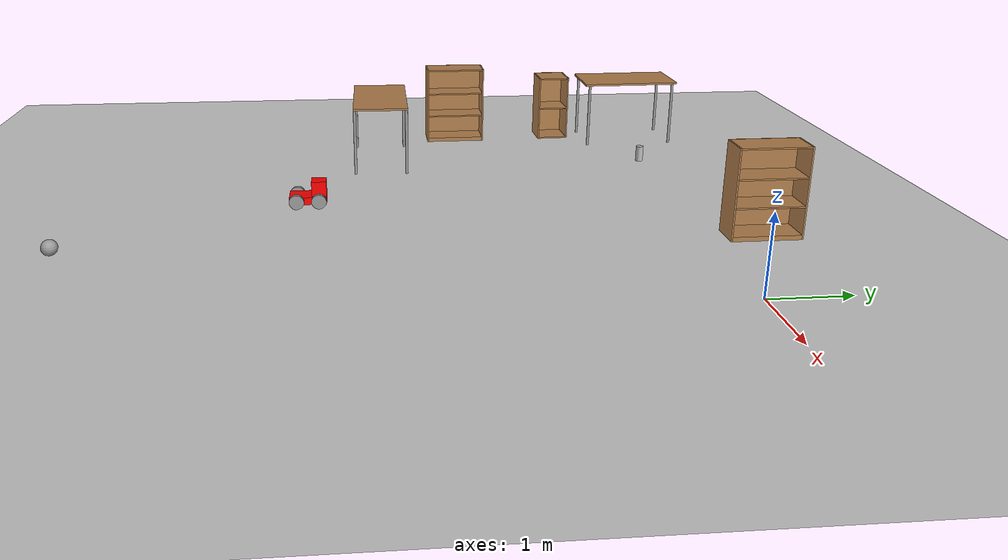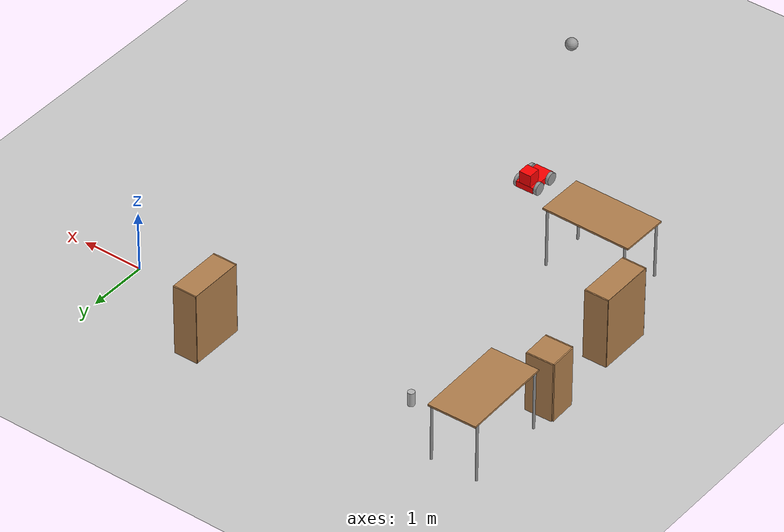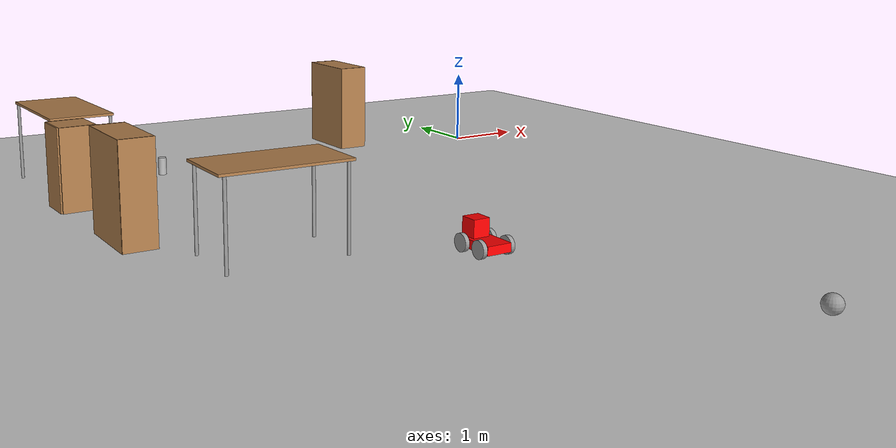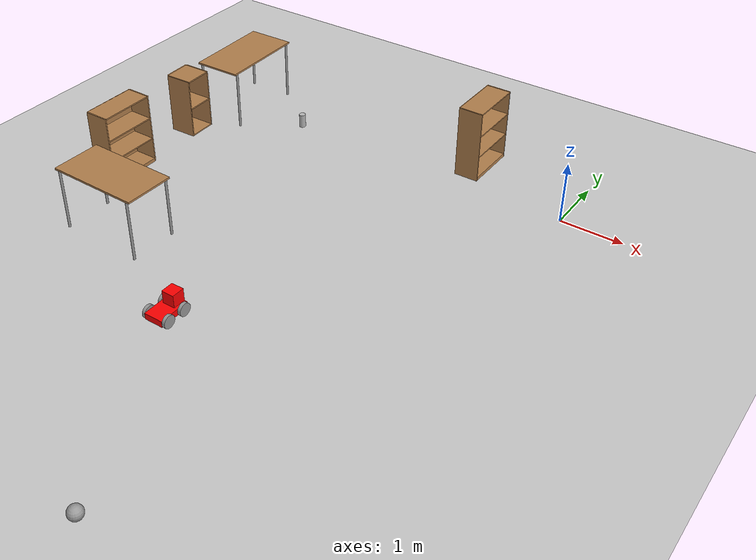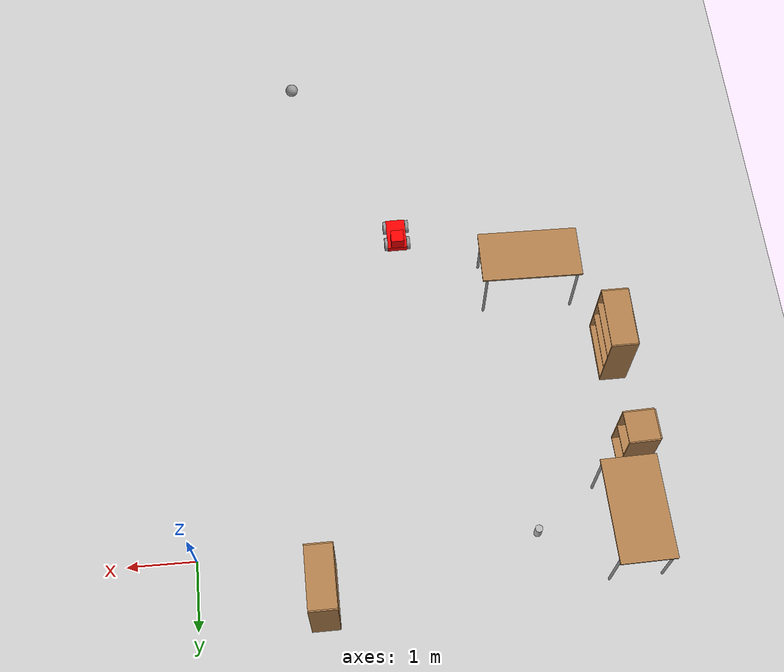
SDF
<sdf version="1.6">
 <world name="default">
  <model name="ground_plane">
   <static>1</static>
   <link name="link">
    <collision name="collision">
     <geometry><plane><normal>0 0 1</normal><size>100 100</size></plane></geometry>
     <surface>
      <contact><collide_bitmask>65535</collide_bitmask></contact>
      <friction><ode><mu>100</mu><mu2>50</mu2></ode></friction>
     </surface>
    </collision>
    <visual name="visual">
     <cast_shadows>0</cast_shadows>
     <geometry><plane><normal>0 0 1</normal><size>100 100</size></plane></geometry>
     <material>
      <script><uri>file://media/materials/scripts/gazebo.material</uri><name>Gazebo/Grey</name></script>
     </material>
    </visual>
   </link>
  </model>
  <model name="table">
   <static>1</static>
   <link name="link">
    <collision name="surface">
     <pose>0 0 1 0 -0 0</pose>
     <geometry><box><size>1.5 0.8 0.03</size></box></geometry>
     <surface><friction><ode><mu>0.6</mu><mu2>0.6</mu2></ode></friction></surface>
    </collision>
    <visual name="visual1">
     <pose>0 0 1 0 -0 0</pose>
     <geometry><box><size>1.5 0.8 0.03</size></box></geometry>
     <material>
      <script><uri>file://media/materials/scripts/gazebo.material</uri><name>Gazebo/Wood</name></script>
     </material>
    </visual>
    <collision name="front_left_leg">
     <pose>0.68 0.38 0.5 0 -0 0</pose>
     <geometry><cylinder><radius>0.02</radius><length>1</length></cylinder></geometry>
    </collision>
    <visual name="front_left_leg">
     <pose>0.68 0.38 0.5 0 -0 0</pose>
     <geometry><cylinder><radius>0.02</radius><length>1</length></cylinder></geometry>
     <material>
      <script><uri>file://media/materials/scripts/gazebo.material</uri><name>Gazebo/Grey</name></script>
     </material>
    </visual>
    <collision name="front_right_leg">
     <pose>0.68 -0.38 0.5 0 -0 0</pose>
     <geometry><cylinder><radius>0.02</radius><length>1</length></cylinder></geometry>
    </collision>
    <visual name="front_right_leg">
     <pose>0.68 -0.38 0.5 0 -0 0</pose>
     <geometry><cylinder><radius>0.02</radius><length>1</length></cylinder></geometry>
     <material>
      <script><uri>file://media/materials/scripts/gazebo.material</uri><name>Gazebo/Grey</name></script>
     </material>
    </visual>
    <collision name="back_right_leg">
     <pose>-0.68 -0.38 0.5 0 -0 0</pose>
     <geometry><cylinder><radius>0.02</radius><length>1</length></cylinder></geometry>
    </collision>
    <visual name="back_right_leg">
     <pose>-0.68 -0.38 0.5 0 -0 0</pose>
     <geometry><cylinder><radius>0.02</radius><length>1</length></cylinder></geometry>
     <material>
      <script><uri>file://media/materials/scripts/gazebo.material</uri><name>Gazebo/Grey</name></script>
     </material>
    </visual>
    <collision name="back_left_leg">
     <pose>-0.68 0.38 0.5 0 -0 0</pose>
     <geometry><cylinder><radius>0.02</radius><length>1</length></cylinder></geometry>
    </collision>
    <visual name="back_left_leg">
     <pose>-0.68 0.38 0.5 0 -0 0</pose>
     <geometry><cylinder><radius>0.02</radius><length>1</length></cylinder></geometry>
     <material>
      <script><uri>file://media/materials/scripts/gazebo.material</uri><name>Gazebo/Grey</name></script>
     </material>
    </visual>
   </link>
   <pose>-5.22763 -3.98162 0 0 0 -0.01339</pose>
  </model>
  <model name="table_0">
   <static>1</static>
   <link name="link">
    <collision name="surface">
     <pose>0 0 1 0 -0 0</pose>
     <geometry><box><size>1.5 0.8 0.03</size></box></geometry>
     <surface><friction><ode><mu>0.6</mu><mu2>0.6</mu2></ode></friction></surface>
    </collision>
    <visual name="visual1">
     <pose>0 0 1 0 -0 0</pose>
     <geometry><box><size>1.5 0.8 0.03</size></box></geometry>
     <material>
      <script><uri>file://media/materials/scripts/gazebo.material</uri><name>Gazebo/Wood</name></script>
     </material>
    </visual>
    <collision name="front_left_leg">
     <pose>0.68 0.38 0.5 0 -0 0</pose>
     <geometry><cylinder><radius>0.02</radius><length>1</length></cylinder></geometry>
    </collision>
    <visual name="front_left_leg">
     <pose>0.68 0.38 0.5 0 -0 0</pose>
     <geometry><cylinder><radius>0.02</radius><length>1</length></cylinder></geometry>
     <material>
      <script><uri>file://media/materials/scripts/gazebo.material</uri><name>Gazebo/Grey</name></script>
     </material>
    </visual>
    <collision name="front_right_leg">
     <pose>0.68 -0.38 0.5 0 -0 0</pose>
     <geometry><cylinder><radius>0.02</radius><length>1</length></cylinder></geometry>
    </collision>
    <visual name="front_right_leg">
     <pose>0.68 -0.38 0.5 0 -0 0</pose>
     <geometry><cylinder><radius>0.02</radius><length>1</length></cylinder></geometry>
     <material>
      <script><uri>file://media/materials/scripts/gazebo.material</uri><name>Gazebo/Grey</name></script>
     </material>
    </visual>
    <collision name="back_right_leg">
     <pose>-0.68 -0.38 0.5 0 -0 0</pose>
     <geometry><cylinder><radius>0.02</radius><length>1</length></cylinder></geometry>
    </collision>
    <visual name="back_right_leg">
     <pose>-0.68 -0.38 0.5 0 -0 0</pose>
     <geometry><cylinder><radius>0.02</radius><length>1</length></cylinder></geometry>
     <material>
      <script><uri>file://media/materials/scripts/gazebo.material</uri><name>Gazebo/Grey</name></script>
     </material>
    </visual>
    <collision name="back_left_leg">
     <pose>-0.68 0.38 0.5 0 -0 0</pose>
     <geometry><cylinder><radius>0.02</radius><length>1</length></cylinder></geometry>
    </collision>
    <visual name="back_left_leg">
     <pose>-0.68 0.38 0.5 0 -0 0</pose>
     <geometry><cylinder><radius>0.02</radius><length>1</length></cylinder></geometry>
     <material>
      <script><uri>file://media/materials/scripts/gazebo.material</uri><name>Gazebo/Grey</name></script>
     </material>
    </visual>
   </link>
   <pose>-6.15982 0.084527 0 0 -0 1.59184</pose>
  </model>
  <model name="bookshelf">
   <static>1</static>
   <link name="link">
    <inertial><mass>1</mass></inertial>
    <collision name="back">
     <pose>0 0.005 0.6 0 -0 0</pose>
     <geometry><box><size>0.9 0.01 1.2</size></box></geometry>
    </collision>
    <visual name="visual1">
     <pose>0 0.005 0.6 0 -0 0</pose>
     <geometry><box><size>0.9 0.01 1.2</size></box></geometry>
     <material>
      <script><uri>file://media/materials/scripts/gazebo.material</uri><name>Gazebo/Wood</name></script>
     </material>
    </visual>
    <collision name="left_side">
     <pose>0.45 -0.195 0.6 0 -0 0</pose>
     <geometry><box><size>0.02 0.4 1.2</size></box></geometry>
    </collision>
    <visual name="visual2">
     <pose>0.45 -0.195 0.6 0 -0 0</pose>
     <geometry><box><size>0.02 0.4 1.2</size></box></geometry>
     <material>
      <script><uri>file://media/materials/scripts/gazebo.material</uri><name>Gazebo/Wood</name></script>
     </material>
    </visual>
    <collision name="right_side">
     <pose>-0.45 -0.195 0.6 0 -0 0</pose>
     <geometry><box><size>0.02 0.4 1.2</size></box></geometry>
    </collision>
    <visual name="visual3">
     <pose>-0.45 -0.195 0.6 0 -0 0</pose>
     <geometry><box><size>0.02 0.4 1.2</size></box></geometry>
     <material>
      <script><uri>file://media/materials/scripts/gazebo.material</uri><name>Gazebo/Wood</name></script>
     </material>
    </visual>
    <collision name="bottom">
     <pose>0 -0.195 0.03 0 -0 0</pose>
     <geometry><box><size>0.88 0.4 0.06</size></box></geometry>
    </collision>
    <visual name="visual4">
     <pose>0 -0.195 0.03 0 -0 0</pose>
     <geometry><box><size>0.88 0.4 0.06</size></box></geometry>
     <material>
      <script><uri>file://media/materials/scripts/gazebo.material</uri><name>Gazebo/Wood</name></script>
     </material>
    </visual>
    <collision name="top">
     <pose>0 -0.195 1.19 0 -0 0</pose>
     <geometry><box><size>0.88 0.4 0.02</size></box></geometry>
    </collision>
    <visual name="visual5">
     <pose>0 -0.195 1.19 0 -0 0</pose>
     <geometry><box><size>0.88 0.4 0.02</size></box></geometry>
     <material>
      <script><uri>file://media/materials/scripts/gazebo.material</uri><name>Gazebo/Wood</name></script>
     </material>
    </visual>
    <collision name="low_shelf">
     <pose>0 -0.195 0.43 0 -0 0</pose>
     <geometry><box><size>0.88 0.4 0.02</size></box></geometry>
    </collision>
    <visual name="visual6">
     <pose>0 -0.195 0.43 0 -0 0</pose>
     <geometry><box><size>0.88 0.4 0.02</size></box></geometry>
     <material>
      <script><uri>file://media/materials/scripts/gazebo.material</uri><name>Gazebo/Wood</name></script>
     </material>
    </visual>
    <collision name="high_shelf">
     <pose>0 -0.195 0.8 0 -0 0</pose>
     <geometry><box><size>0.88 0.4 0.02</size></box></geometry>
    </collision>
    <visual name="visual7">
     <pose>0 -0.195 0.8 0 -0 0</pose>
     <geometry><box><size>0.88 0.4 0.02</size></box></geometry>
     <material>
      <script><uri>file://media/materials/scripts/gazebo.material</uri><name>Gazebo/Wood</name></script>
     </material>
    </visual>
   </link>
   <pose>-6.54855 -2.72948 0 0 -0 1.57441</pose>
  </model>
  <model name="cabinet">
   <static>1</static>
   <link name="cabinet_bottom_plate">
    <inertial>
     <pose>0 0 -1 0 -0 0</pose>
     <inertia><ixx>2.05</ixx><ixy>0</ixy><ixz>0</ixz><iyy>2.05</iyy><iyz>0</iyz><izz>2.05</izz></inertia>
     <mass>25</mass>
    </inertial>
    <collision name="cabinet_bottom_plate_geom">
     <pose>0 0 0.01 0 -0 0</pose>
     <geometry><box><size>0.45 0.45 0.02</size></box></geometry>
    </collision>
    <visual name="cabinet_bottom_plate_geom_visual">
     <pose>0 0 0.01 0 -0 0</pose>
     <geometry><box><size>0.45 0.45 0.02</size></box></geometry>
     <material>
      <script><uri>file://media/materials/scripts/gazebo.material</uri><name>Gazebo/Wood</name></script>
     </material>
    </visual>
    <collision name="cabinet_bottom_plate_geom_cabinet_back_plate">
     <pose>0.235 0 0.51 0 -0 0</pose>
     <geometry><box><size>0.02 0.45 1.02</size></box></geometry>
    </collision>
    <visual name="cabinet_bottom_plate_geom_cabinet_back_plate_visual">
     <pose>0.235 0 0.51 0 -0 0</pose>
     <geometry><box><size>0.02 0.45 1.02</size></box></geometry>
     <material>
      <script><uri>file://media/materials/scripts/gazebo.material</uri><name>Gazebo/Wood</name></script>
     </material>
    </visual>
    <collision name="cabinet_bottom_plate_geom_cabinet_left_plate">
     <pose>0 0.235 0.51 0 -0 0</pose>
     <geometry><box><size>0.45 0.02 1.02</size></box></geometry>
    </collision>
    <visual name="cabinet_bottom_plate_geom_cabinet_left_plate_visual">
     <pose>0 0.235 0.51 0 -0 0</pose>
     <geometry><box><size>0.45 0.02 1.02</size></box></geometry>
     <material>
      <script><uri>file://media/materials/scripts/gazebo.material</uri><name>Gazebo/Wood</name></script>
     </material>
    </visual>
    <collision name="cabinet_bottom_plate_geom_cabinet_middle_plate">
     <pose>0 0 0.51 0 -0 0</pose>
     <geometry><box><size>0.45 0.45 0.02</size></box></geometry>
    </collision>
    <visual name="cabinet_bottom_plate_geom_cabinet_middle_plate_visual">
     <pose>0 0 0.51 0 -0 0</pose>
     <geometry><box><size>0.45 0.45 0.02</size></box></geometry>
     <material>
      <script><uri>file://media/materials/scripts/gazebo.material</uri><name>Gazebo/Wood</name></script>
     </material>
    </visual>
    <collision name="cabinet_bottom_plate_geom_cabinet_right_plate">
     <pose>0 -0.235 0.51 0 -0 0</pose>
     <geometry><box><size>0.45 0.02 1.02</size></box></geometry>
    </collision>
    <visual name="cabinet_bottom_plate_geom_cabinet_right_plate_visual">
     <pose>0 -0.235 0.51 0 -0 0</pose>
     <geometry><box><size>0.45 0.02 1.02</size></box></geometry>
     <material>
      <script><uri>file://media/materials/scripts/gazebo.material</uri><name>Gazebo/Wood</name></script>
     </material>
    </visual>
    <collision name="cabinet_bottom_plate_geom_cabinet_top_plate">
     <pose>0 0 1.01 0 -0 0</pose>
     <geometry><box><size>0.45 0.45 0.02</size></box></geometry>
    </collision>
    <visual name="cabinet_bottom_plate_geom_cabinet_top_plate_visual">
     <pose>0 0 1.01 0 -0 0</pose>
     <geometry><box><size>0.45 0.45 0.02</size></box></geometry>
     <material>
      <script><uri>file://media/materials/scripts/gazebo.material</uri><name>Gazebo/Wood</name></script>
     </material>
    </visual>
   </link>
   <pose>-6.41047 -1.09735 0.00285 0 0 -3.11061</pose>
  </model>
  <model name="beer">
   <link name="link">
    <pose>0 0 0.115 0 -0 0</pose>
    <inertial>
     <mass>0.39</mass>
     <inertia><ixx>0.00058</ixx><ixy>0</ixy><ixz>0</ixz><iyy>0.00058</iyy><iyz>0</iyz><izz>0.00019</izz></inertia>
    </inertial>
    <collision name="collision">
     <geometry><cylinder><radius>0.055</radius><length>0.23</length></cylinder></geometry>
    </collision>
    <visual name="visual">
     <geometry><cylinder><radius>0.055</radius><length>0.23</length></cylinder></geometry>
     <material>
      <script>
       <uri>model://beer/materials/scripts</uri>
       <uri>model://beer/materials/textures</uri>
       <name>Beer/Diffuse</name>
      </script>
     </material>
    </visual>
   </link>
   <pose>-4.87793 0.021203 -2e-06 1e-06 -0 -0.000914</pose>
  </model>
  <model name="bookshelf_0">
   <static>1</static>
   <link name="link">
    <inertial><mass>1</mass></inertial>
    <collision name="back">
     <pose>0 0.005 0.6 0 -0 0</pose>
     <geometry><box><size>0.9 0.01 1.2</size></box></geometry>
    </collision>
    <visual name="visual1">
     <pose>0 0.005 0.6 0 -0 0</pose>
     <geometry><box><size>0.9 0.01 1.2</size></box></geometry>
     <material>
      <script><uri>file://media/materials/scripts/gazebo.material</uri><name>Gazebo/Wood</name></script>
     </material>
    </visual>
    <collision name="left_side">
     <pose>0.45 -0.195 0.6 0 -0 0</pose>
     <geometry><box><size>0.02 0.4 1.2</size></box></geometry>
    </collision>
    <visual name="visual2">
     <pose>0.45 -0.195 0.6 0 -0 0</pose>
     <geometry><box><size>0.02 0.4 1.2</size></box></geometry>
     <material>
      <script><uri>file://media/materials/scripts/gazebo.material</uri><name>Gazebo/Wood</name></script>
     </material>
    </visual>
    <collision name="right_side">
     <pose>-0.45 -0.195 0.6 0 -0 0</pose>
     <geometry><box><size>0.02 0.4 1.2</size></box></geometry>
    </collision>
    <visual name="visual3">
     <pose>-0.45 -0.195 0.6 0 -0 0</pose>
     <geometry><box><size>0.02 0.4 1.2</size></box></geometry>
     <material>
      <script><uri>file://media/materials/scripts/gazebo.material</uri><name>Gazebo/Wood</name></script>
     </material>
    </visual>
    <collision name="bottom">
     <pose>0 -0.195 0.03 0 -0 0</pose>
     <geometry><box><size>0.88 0.4 0.06</size></box></geometry>
    </collision>
    <visual name="visual4">
     <pose>0 -0.195 0.03 0 -0 0</pose>
     <geometry><box><size>0.88 0.4 0.06</size></box></geometry>
     <material>
      <script><uri>file://media/materials/scripts/gazebo.material</uri><name>Gazebo/Wood</name></script>
     </material>
    </visual>
    <collision name="top">
     <pose>0 -0.195 1.19 0 -0 0</pose>
     <geometry><box><size>0.88 0.4 0.02</size></box></geometry>
    </collision>
    <visual name="visual5">
     <pose>0 -0.195 1.19 0 -0 0</pose>
     <geometry><box><size>0.88 0.4 0.02</size></box></geometry>
     <material>
      <script><uri>file://media/materials/scripts/gazebo.material</uri><name>Gazebo/Wood</name></script>
     </material>
    </visual>
    <collision name="low_shelf">
     <pose>0 -0.195 0.43 0 -0 0</pose>
     <geometry><box><size>0.88 0.4 0.02</size></box></geometry>
    </collision>
    <visual name="visual6">
     <pose>0 -0.195 0.43 0 -0 0</pose>
     <geometry><box><size>0.88 0.4 0.02</size></box></geometry>
     <material>
      <script><uri>file://media/materials/scripts/gazebo.material</uri><name>Gazebo/Wood</name></script>
     </material>
    </visual>
    <collision name="high_shelf">
     <pose>0 -0.195 0.8 0 -0 0</pose>
     <geometry><box><size>0.88 0.4 0.02</size></box></geometry>
    </collision>
    <visual name="visual7">
     <pose>0 -0.195 0.8 0 -0 0</pose>
     <geometry><box><size>0.88 0.4 0.02</size></box></geometry>
     <material>
      <script><uri>file://media/materials/scripts/gazebo.material</uri><name>Gazebo/Wood</name></script>
     </material>
    </visual>
   </link>
   <pose>-1.95982 0.684506 0 0 -0 1.5743</pose>
  </model>
  <model name="RobotCar_0">
   <link name="link_0_clone">
    <pose>-0 -0.025 -0.025 0 -0 0</pose>
    <inertial>
     <mass>0.5</mass>
     <inertia>
      <ixx>0.166667</ixx>
      <ixy>0</ixy>
      <ixz>0</ixz>
      <iyy>0.166667</iyy>
      <iyz>0</iyz>
      <izz>0.166667</izz>
     </inertia>
    </inertial>
    <visual name="visual">
     <geometry><box><size>0.3 0.5 0.1</size></box></geometry>
     <material>
      <lighting>1</lighting>
      <script><uri>file://media/materials/scripts/gazebo.material</uri><name>Gazebo/Grey</name></script>
      <shader type="pixel"><normal_map>__default__</normal_map></shader>
      <ambient>1 0 0 1</ambient>
      <diffuse>0.7 0.7 0.7 1</diffuse>
      <specular>0.01 0.01 0.01 1</specular>
      <emissive>0 0 0 1</emissive>
     </material>
    </visual>
    <collision name="collision">
     <geometry><box><size>0.3 0.5 0.1</size></box></geometry>
     <surface>
      <friction>
       <ode><mu>1</mu><mu2>1</mu2><fdir1>0 0 0</fdir1><slip1>0</slip1><slip2>0</slip2></ode>
       <torsional>
        <coefficient>1</coefficient>
        <patch_radius>0</patch_radius>
        <surface_radius>0</surface_radius>
        <use_patch_radius>1</use_patch_radius>
        <ode><slip>0</slip></ode>
       </torsional>
      </friction>
      <bounce><restitution_coefficient>0</restitution_coefficient><threshold>1e+06</threshold></bounce>
      <contact>
       <collide_without_contact>0</collide_without_contact>
       <collide_without_contact_bitmask>1</collide_without_contact_bitmask>
       <collide_bitmask>1</collide_bitmask>
       <ode>
        <soft_cfm>0</soft_cfm>
        <soft_erp>0.2</soft_erp>
        <kp>1e+13</kp>
        <kd>1</kd>
        <max_vel>0.01</max_vel>
        <min_depth>0</min_depth>
       </ode>
       <bullet>
        <split_impulse>1</split_impulse>
        <split_impulse_penetration_threshold>-0.01</split_impulse_penetration_threshold>
        <soft_cfm>0</soft_cfm>
        <soft_erp>0.2</soft_erp>
        <kp>1e+13</kp>
        <kd>1</kd>
       </bullet>
      </contact>
     </surface>
    </collision>
   </link>
   <link name="link_4_clone">
    <pose>-0.17508 0.124999 -0.025 0 -1.57 0</pose>
    <inertial>
     <mass>1</mass>
     <inertia><ixx>0.145833</ixx><ixy>0</ixy><ixz>0</ixz><iyy>0.145833</iyy><iyz>0</iyz><izz>0.125</izz></inertia>
    </inertial>
    <visual name="visual">
     <geometry><cylinder><radius>0.1</radius><length>0.05</length></cylinder></geometry>
     <material>
      <lighting>1</lighting>
      <script><uri>file://media/materials/scripts/gazebo.material</uri><name>Gazebo/Grey</name></script>
      <shader type="pixel"><normal_map>__default__</normal_map></shader>
      <ambient>0.3 0.3 0.3 1</ambient>
      <diffuse>0.7 0.7 0.7 1</diffuse>
      <specular>0.01 0.01 0.01 1</specular>
      <emissive>0 0 0 1</emissive>
     </material>
    </visual>
    <collision name="collision">
     <geometry><cylinder><radius>0.1</radius><length>0.05</length></cylinder></geometry>
     <surface>
      <friction>
       <ode><mu>1</mu><mu2>1</mu2><fdir1>0 0 0</fdir1><slip1>0</slip1><slip2>0</slip2></ode>
       <torsional>
        <coefficient>1</coefficient>
        <patch_radius>0</patch_radius>
        <surface_radius>0</surface_radius>
        <use_patch_radius>1</use_patch_radius>
        <ode><slip>0</slip></ode>
       </torsional>
      </friction>
      <bounce><restitution_coefficient>0</restitution_coefficient><threshold>1e+06</threshold></bounce>
      <contact>
       <collide_without_contact>0</collide_without_contact>
       <collide_without_contact_bitmask>1</collide_without_contact_bitmask>
       <collide_bitmask>1</collide_bitmask>
       <ode>
        <soft_cfm>0</soft_cfm>
        <soft_erp>0.2</soft_erp>
        <kp>1e+13</kp>
        <kd>1</kd>
        <max_vel>0.01</max_vel>
        <min_depth>0</min_depth>
       </ode>
       <bullet>
        <split_impulse>1</split_impulse>
        <split_impulse_penetration_threshold>-0.01</split_impulse_penetration_threshold>
        <soft_cfm>0</soft_cfm>
        <soft_erp>0.2</soft_erp>
        <kp>1e+13</kp>
        <kd>1</kd>
       </bullet>
      </contact>
     </surface>
    </collision>
   </link>
   <link name="link_4_clone_clone">
    <pose>0.17508 0.124999 -0.025 0 -1.57 0</pose>
    <inertial>
     <mass>1</mass>
     <inertia><ixx>0.145833</ixx><ixy>0</ixy><ixz>0</ixz><iyy>0.145833</iyy><iyz>0</iyz><izz>0.125</izz></inertia>
    </inertial>
    <visual name="visual">
     <geometry><cylinder><radius>0.1</radius><length>0.05</length></cylinder></geometry>
     <material>
      <lighting>1</lighting>
      <script><uri>file://media/materials/scripts/gazebo.material</uri><name>Gazebo/Grey</name></script>
      <shader type="pixel"><normal_map>__default__</normal_map></shader>
      <ambient>0.3 0.3 0.3 1</ambient>
      <diffuse>0.7 0.7 0.7 1</diffuse>
      <specular>0.01 0.01 0.01 1</specular>
      <emissive>0 0 0 1</emissive>
     </material>
    </visual>
    <collision name="collision">
     <geometry><cylinder><radius>0.1</radius><length>0.05</length></cylinder></geometry>
     <surface>
      <friction>
       <ode><mu>1</mu><mu2>1</mu2><fdir1>0 0 0</fdir1><slip1>0</slip1><slip2>0</slip2></ode>
       <torsional>
        <coefficient>1</coefficient>
        <patch_radius>0</patch_radius>
        <surface_radius>0</surface_radius>
        <use_patch_radius>1</use_patch_radius>
        <ode><slip>0</slip></ode>
       </torsional>
      </friction>
      <bounce><restitution_coefficient>0</restitution_coefficient><threshold>1e+06</threshold></bounce>
      <contact>
       <collide_without_contact>0</collide_without_contact>
       <collide_without_contact_bitmask>1</collide_without_contact_bitmask>
       <collide_bitmask>1</collide_bitmask>
       <ode>
        <soft_cfm>0</soft_cfm>
        <soft_erp>0.2</soft_erp>
        <kp>1e+13</kp>
        <kd>1</kd>
        <max_vel>0.01</max_vel>
        <min_depth>0</min_depth>
       </ode>
       <bullet>
        <split_impulse>1</split_impulse>
        <split_impulse_penetration_threshold>-0.01</split_impulse_penetration_threshold>
        <soft_cfm>0</soft_cfm>
        <soft_erp>0.2</soft_erp>
        <kp>1e+13</kp>
        <kd>1</kd>
       </bullet>
      </contact>
     </surface>
    </collision>
   </link>
   <link name="link_4_clone_clone_0">
    <pose>0.17508 -0.175 -0.025 0 -1.57 0</pose>
    <inertial>
     <mass>1</mass>
     <inertia><ixx>0.145833</ixx><ixy>0</ixy><ixz>0</ixz><iyy>0.145833</iyy><iyz>0</iyz><izz>0.125</izz></inertia>
    </inertial>
    <visual name="visual">
     <geometry><cylinder><radius>0.1</radius><length>0.05</length></cylinder></geometry>
     <material>
      <lighting>1</lighting>
      <script><uri>file://media/materials/scripts/gazebo.material</uri><name>Gazebo/Grey</name></script>
      <shader type="pixel"><normal_map>__default__</normal_map></shader>
      <ambient>0.3 0.3 0.3 1</ambient>
      <diffuse>0.7 0.7 0.7 1</diffuse>
      <specular>0.01 0.01 0.01 1</specular>
      <emissive>0 0 0 1</emissive>
     </material>
    </visual>
    <collision name="collision">
     <geometry><cylinder><radius>0.1</radius><length>0.05</length></cylinder></geometry>
     <surface>
      <friction>
       <ode><mu>1</mu><mu2>1</mu2><fdir1>0 0 0</fdir1><slip1>0</slip1><slip2>0</slip2></ode>
       <torsional>
        <coefficient>1</coefficient>
        <patch_radius>0</patch_radius>
        <surface_radius>0</surface_radius>
        <use_patch_radius>1</use_patch_radius>
        <ode><slip>0</slip></ode>
       </torsional>
      </friction>
      <bounce><restitution_coefficient>0</restitution_coefficient><threshold>1e+06</threshold></bounce>
      <contact>
       <collide_without_contact>0</collide_without_contact>
       <collide_without_contact_bitmask>1</collide_without_contact_bitmask>
       <collide_bitmask>1</collide_bitmask>
       <ode>
        <soft_cfm>0</soft_cfm>
        <soft_erp>0.2</soft_erp>
        <kp>1e+13</kp>
        <kd>1</kd>
        <max_vel>0.01</max_vel>
        <min_depth>0</min_depth>
       </ode>
       <bullet>
        <split_impulse>1</split_impulse>
        <split_impulse_penetration_threshold>-0.01</split_impulse_penetration_threshold>
        <soft_cfm>0</soft_cfm>
        <soft_erp>0.2</soft_erp>
        <kp>1e+13</kp>
        <kd>1</kd>
       </bullet>
      </contact>
     </surface>
    </collision>
   </link>
   <link name="link_4_clone_clone_1">
    <pose>-0.17508 -0.175 -0.025 0 -1.57 0</pose>
    <inertial>
     <mass>1</mass>
     <inertia><ixx>0.145833</ixx><ixy>0</ixy><ixz>0</ixz><iyy>0.145833</iyy><iyz>0</iyz><izz>0.125</izz></inertia>
    </inertial>
    <visual name="visual">
     <geometry><cylinder><radius>0.1</radius><length>0.05</length></cylinder></geometry>
     <material>
      <lighting>1</lighting>
      <script><uri>file://media/materials/scripts/gazebo.material</uri><name>Gazebo/Grey</name></script>
      <shader type="pixel"><normal_map>__default__</normal_map></shader>
      <ambient>0.3 0.3 0.3 1</ambient>
      <diffuse>0.7 0.7 0.7 1</diffuse>
      <specular>0.01 0.01 0.01 1</specular>
      <emissive>0 0 0 1</emissive>
     </material>
    </visual>
    <collision name="collision">
     <geometry><cylinder><radius>0.1</radius><length>0.05</length></cylinder></geometry>
     <surface>
      <friction>
       <ode><mu>1</mu><mu2>1</mu2><fdir1>0 0 0</fdir1><slip1>0</slip1><slip2>0</slip2></ode>
       <torsional>
        <coefficient>1</coefficient>
        <patch_radius>0</patch_radius>
        <surface_radius>0</surface_radius>
        <use_patch_radius>1</use_patch_radius>
        <ode><slip>0</slip></ode>
       </torsional>
      </friction>
      <bounce><restitution_coefficient>0</restitution_coefficient><threshold>1e+06</threshold></bounce>
      <contact>
       <collide_without_contact>0</collide_without_contact>
       <collide_without_contact_bitmask>1</collide_without_contact_bitmask>
       <collide_bitmask>1</collide_bitmask>
       <ode>
        <soft_cfm>0</soft_cfm>
        <soft_erp>0.2</soft_erp>
        <kp>1e+13</kp>
        <kd>1</kd>
        <max_vel>0.01</max_vel>
        <min_depth>0</min_depth>
       </ode>
       <bullet>
        <split_impulse>1</split_impulse>
        <split_impulse_penetration_threshold>-0.01</split_impulse_penetration_threshold>
        <soft_cfm>0</soft_cfm>
        <soft_erp>0.2</soft_erp>
        <kp>1e+13</kp>
        <kd>1</kd>
       </bullet>
      </contact>
     </surface>
    </collision>
   </link>
   <link name="link_5_clone">
    <pose>0 0.125 0.125 0 -0 0</pose>
    <inertial>
     <mass>0.2</mass>
     <inertia><ixx>1</ixx><ixy>0</ixy><ixz>0</ixz><iyy>1</iyy><iyz>0</iyz><izz>1</izz></inertia>
    </inertial>
    <visual name="visual">
     <geometry><box><size>0.2 0.2 0.2</size></box></geometry>
     <material>
      <lighting>1</lighting>
      <script><uri>file://media/materials/scripts/gazebo.material</uri><name>Gazebo/Grey</name></script>
      <shader type="pixel"><normal_map>__default__</normal_map></shader>
      <ambient>1 0 0 1</ambient>
      <diffuse>0.7 0.7 0.7 1</diffuse>
      <specular>0.01 0.01 0.01 1</specular>
      <emissive>0 0 0 1</emissive>
     </material>
    </visual>
    <collision name="collision">
     <geometry><box><size>0.2 0.2 0.2</size></box></geometry>
     <surface>
      <friction>
       <ode><mu>1</mu><mu2>1</mu2><fdir1>0 0 0</fdir1><slip1>0</slip1><slip2>0</slip2></ode>
       <torsional>
        <coefficient>1</coefficient>
        <patch_radius>0</patch_radius>
        <surface_radius>0</surface_radius>
        <use_patch_radius>1</use_patch_radius>
        <ode><slip>0</slip></ode>
       </torsional>
      </friction>
      <bounce><restitution_coefficient>0</restitution_coefficient><threshold>1e+06</threshold></bounce>
      <contact>
       <collide_without_contact>0</collide_without_contact>
       <collide_without_contact_bitmask>1</collide_without_contact_bitmask>
       <collide_bitmask>1</collide_bitmask>
       <ode>
        <soft_cfm>0</soft_cfm>
        <soft_erp>0.2</soft_erp>
        <kp>1e+13</kp>
        <kd>1</kd>
        <max_vel>0.01</max_vel>
        <min_depth>0</min_depth>
       </ode>
       <bullet>
        <split_impulse>1</split_impulse>
        <split_impulse_penetration_threshold>-0.01</split_impulse_penetration_threshold>
        <soft_cfm>0</soft_cfm>
        <soft_erp>0.2</soft_erp>
        <kp>1e+13</kp>
        <kd>1</kd>
       </bullet>
      </contact>
     </surface>
    </collision>
   </link>
   <joint name="link_0_clone_JOINT_10" type="revolute">
    <parent>link_0_clone</parent>
    <child>link_4_clone_clone_0</child>
    <axis>
     <xyz>0 0 1</xyz>
     <use_parent_model_frame>0</use_parent_model_frame>
     <limit>
      <lower>-1.79769e+308</lower>
      <upper>1.79769e+308</upper>
      <effort>-1</effort>
      <velocity>-1</velocity>
     </limit>
     <dynamics>
      <spring_reference>0</spring_reference>
      <spring_stiffness>0</spring_stiffness>
      <damping>0</damping>
      <friction>0</friction>
     </dynamics>
    </axis>
    <physics>
     <ode><limit><cfm>0</cfm><erp>0.2</erp></limit><suspension><cfm>0</cfm><erp>0.2</erp></suspension></ode>
    </physics>
   </joint>
   <joint name="link_0_clone_JOINT_11" type="fixed">
    <parent>link_0_clone</parent>
    <child>link_5_clone</child>
    <physics>
     <ode><limit><cfm>0</cfm><erp>0.2</erp></limit><suspension><cfm>0</cfm><erp>0.2</erp></suspension></ode>
    </physics>
   </joint>
   <joint name="link_0_clone_JOINT_7" type="revolute">
    <parent>link_0_clone</parent>
    <child>link_4_clone_clone_1</child>
    <axis>
     <xyz>0 0 1</xyz>
     <use_parent_model_frame>0</use_parent_model_frame>
     <limit>
      <lower>-1.79769e+308</lower>
      <upper>1.79769e+308</upper>
      <effort>-1</effort>
      <velocity>-1</velocity>
     </limit>
     <dynamics>
      <spring_reference>0</spring_reference>
      <spring_stiffness>0</spring_stiffness>
      <damping>0</damping>
      <friction>0</friction>
     </dynamics>
    </axis>
    <physics>
     <ode><limit><cfm>0</cfm><erp>0.2</erp></limit><suspension><cfm>0</cfm><erp>0.2</erp></suspension></ode>
    </physics>
   </joint>
   <joint name="link_0_clone_JOINT_8" type="revolute">
    <parent>link_0_clone</parent>
    <child>link_4_clone</child>
    <axis>
     <xyz>0 0 1</xyz>
     <use_parent_model_frame>0</use_parent_model_frame>
     <limit>
      <lower>-1.79769e+308</lower>
      <upper>1.79769e+308</upper>
      <effort>-1</effort>
      <velocity>-1</velocity>
     </limit>
     <dynamics>
      <spring_reference>0</spring_reference>
      <spring_stiffness>0</spring_stiffness>
      <damping>0</damping>
      <friction>0</friction>
     </dynamics>
    </axis>
    <physics>
     <ode><limit><cfm>0</cfm><erp>0.2</erp></limit><suspension><cfm>0</cfm><erp>0.2</erp></suspension></ode>
    </physics>
   </joint>
   <joint name="link_0_clone_JOINT_9" type="revolute">
    <parent>link_0_clone</parent>
    <child>link_4_clone_clone</child>
    <axis>
     <xyz>0 0 1</xyz>
     <use_parent_model_frame>0</use_parent_model_frame>
     <limit>
      <lower>-1.79769e+308</lower>
      <upper>1.79769e+308</upper>
      <effort>-1</effort>
      <velocity>-1</velocity>
     </limit>
     <dynamics>
      <spring_reference>0</spring_reference>
      <spring_stiffness>0</spring_stiffness>
      <damping>0</damping>
      <friction>0</friction>
     </dynamics>
    </axis>
    <physics>
     <ode><limit><cfm>0</cfm><erp>0.2</erp></limit><suspension><cfm>0</cfm><erp>0.2</erp></suspension></ode>
    </physics>
   </joint>
   <static>0</static>
   <pose>-3.31249 -4.98702 0.125021 3e-06 1e-06 0.002387</pose>
  </model>
  <model name="my_ball">
   <link name="link_0">
    <inertial>
     <mass>1</mass>
     <inertia><ixx>0.1</ixx><ixy>0</ixy><ixz>0</ixz><iyy>0.1</iyy><iyz>0</iyz><izz>0.1</izz></inertia>
    </inertial>
    <visual name="visual">
     <geometry><sphere><radius>0.1</radius></sphere></geometry>
     <material>
      <lighting>1</lighting>
      <script><uri>file://media/materials/scripts/gazebo.material</uri><name>Gazebo/Grey</name></script>
      <shader type="pixel"><normal_map>__default__</normal_map></shader>
      <ambient>1 1 1 1</ambient>
      <diffuse>1 1 1 1</diffuse>
      <specular>1 1 1 1</specular>
      <emissive>1 1 1 1</emissive>
     </material>
    </visual>
    <collision name="collision">
     <geometry><sphere><radius>0.1</radius></sphere></geometry>
     <surface>
      <friction>
       <ode><mu>1</mu><mu2>1</mu2><fdir1>0 0 0</fdir1><slip1>0</slip1><slip2>0</slip2></ode>
       <torsional>
        <coefficient>1</coefficient>
        <patch_radius>0</patch_radius>
        <surface_radius>0</surface_radius>
        <use_patch_radius>1</use_patch_radius>
        <ode><slip>0</slip></ode>
       </torsional>
      </friction>
      <bounce><restitution_coefficient>0</restitution_coefficient><threshold>1e+06</threshold></bounce>
      <contact>
       <collide_without_contact>0</collide_without_contact>
       <collide_without_contact_bitmask>1</collide_without_contact_bitmask>
       <collide_bitmask>1</collide_bitmask>
       <ode>
        <soft_cfm>0</soft_cfm>
        <soft_erp>0.2</soft_erp>
        <kp>1e+13</kp>
        <kd>1</kd>
        <max_vel>0.01</max_vel>
        <min_depth>0</min_depth>
       </ode>
       <bullet>
        <split_impulse>1</split_impulse>
        <split_impulse_penetration_threshold>-0.01</split_impulse_penetration_threshold>
        <soft_cfm>0</soft_cfm>
        <soft_erp>0.2</soft_erp>
        <kp>1e+13</kp>
        <kd>1</kd>
       </bullet>
      </contact>
     </surface>
    </collision>
   </link>
   <static>0</static>
   <pose>-1.81352 -7.99117 0.1 0 -0 0</pose>
  </model>
 </world>
</sdf>
